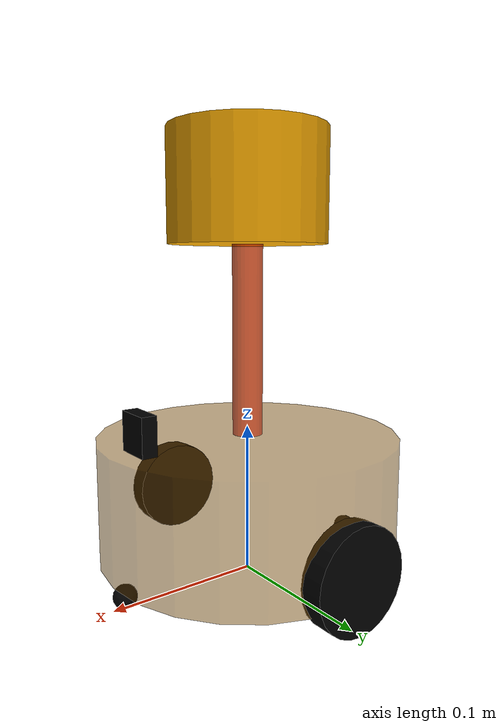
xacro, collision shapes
<!-- 组合小车底盘与摄像头与雷达 -->

<robot name="big_car" xmlns:xacro="http://wiki.ros.org/xacro">
    <xacro:include filename="my_head.urdf.xacro" />
    <xacro:include filename="my_base.urdf.xacro" />
    <xacro:include filename="my_camera.urdf.xacro" />
    <xacro:include filename="$(find my_velodyne_description)/urdf/VLP-16.urdf.xacro" />
    <xacro:include filename="move.urdf.xacro" />

    <!-- 调用VLP-16的宏 -->
    <xacro:VLP-16 parent="support">
        <origin xyz="0 0 0.05" rpy="0 0 0" />
    </xacro:VLP-16>
</robot>

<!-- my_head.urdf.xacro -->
<robot name="base" xmlns:xacro="http://wiki.ros.org/xacro">
    <!-- Macro for inertia matrix -->
    <xacro:macro name="sphere_inertial_matrix" params="m r">
        <inertial>
            <mass value="${m}" />
            <inertia ixx="${2*m*r*r/5}" ixy="0" ixz="0"
                iyy="${2*m*r*r/5}" iyz="0"
                izz="${2*m*r*r/5}" />
        </inertial>
    </xacro:macro>

    <xacro:macro name="cylinder_inertial_matrix" params="m r h">
        <inertial>
            <mass value="${m}" />
            <inertia ixx="${m*(3*r*r+h*h)/12}" ixy = "0" ixz = "0"
                iyy="${m*(3*r*r+h*h)/12}" iyz = "0"
                izz="${m*r*r/2}" />
        </inertial>
    </xacro:macro>

    <xacro:macro name="Box_inertial_matrix" params="m l w h">
       <inertial>
               <mass value="${m}" />
               <inertia ixx="${m*(h*h + l*l)/12}" ixy = "0" ixz = "0"
                   iyy="${m*(w*w + l*l)/12}" iyz= "0"
                   izz="${m*(w*w + h*h)/12}" />
       </inertial>
   </xacro:macro>
</robot>

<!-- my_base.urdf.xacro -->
<robot name="my_base" xmlns:xacro="http://www.ros.org/wiki/xacro">
    <!-- 封装变量、常量 -->
    <xacro:property name="PI" value="3.1415926"/>
    <!-- 宏:黑色设置 -->
    <material name="black">
        <color rgba="0.0 0.0 0.0 1.0" />
    </material>
    <!-- 底盘属性 -->
    <xacro:property name="base_footprint_radius" value="0.001" /> <!-- base_footprint 半径  -->
    <xacro:property name="base_link_radius" value="0.1" /> <!-- base_link 半径 -->
    <xacro:property name="base_link_length" value="0.08" /> <!-- base_link 长 -->
    <xacro:property name="earth_space" value="0.015" /> <!-- 离地间距 -->
    <xacro:property name="base_link_m" value="0.5" /> <!-- 质量  -->

    <!-- 底盘 -->
    <link name="base_footprint">
      <visual>
        <geometry>
          <sphere radius="${base_footprint_radius}" />
        </geometry>
      </visual>
    </link>

    <link name="base_link">
      <visual>
        <geometry>
          <cylinder radius="${base_link_radius}" length="${base_link_length}" />
        </geometry>
        <origin xyz="0 0 0" rpy="0 0 0" />
        <material name="yellow">
          <color rgba="0.5 0.3 0.0 0.5" />
        </material>
      </visual>

      <collision>
        <geometry>
          <cylinder radius="${base_link_radius}" length="${base_link_length}" />
        </geometry>
        <origin xyz="0 0 0" rpy="0 0 0" />
      </collision>

      <xacro:cylinder_inertial_matrix m="${base_link_m}" r="${base_link_radius}" h="${base_link_length}" />

    </link>

    <joint name="base_link2base_footprint" type="fixed">
      <parent link="base_footprint" />
      <child link="base_link" />
      <origin xyz="0 0 ${earth_space + base_link_length / 2 }" />
    </joint>

    <gazebo reference="base_link">
        <material>Gazebo/Yellow</material>
    </gazebo>

    <!-- 驱动轮 -->
    <!-- 驱动轮属性 -->
    <xacro:property name="wheel_radius" value="0.0325" /><!-- 半径 -->
    <xacro:property name="wheel_length" value="0.015" /><!-- 宽度 -->
    <xacro:property name="wheel_m" value="0.05" /> <!-- 质量  -->

    <!-- 驱动轮宏实现 -->
    <xacro:macro name="add_wheels" params="name flag">
      <link name="${name}_wheel">
        <visual>
          <geometry>
            <cylinder radius="${wheel_radius}" length="${wheel_length}" />
          </geometry>
          <origin xyz="0.0 0.0 0.0" rpy="${PI / 2} 0.0 0.0" />
          <material name="black" />
        </visual>

        <collision>
          <geometry>
            <cylinder radius="${wheel_radius}" length="${wheel_length}" />
          </geometry>
          <origin xyz="0.0 0.0 0.0" rpy="${PI / 2} 0.0 0.0" />
        </collision>

        <xacro:cylinder_inertial_matrix m="${wheel_m}" r="${wheel_radius}" h="${wheel_length}" />

      </link>

      <joint name="${name}_wheel2base_link" type="continuous">
        <parent link="base_link" />
        <child link="${name}_wheel" />
        <origin xyz="0 ${flag * base_link_radius} ${-(earth_space + base_link_length / 2 - wheel_radius) }" />
        <axis xyz="0 1 0" />
      </joint>

      <gazebo reference="${name}_wheel">
          <material>Gazebo/Black</material>
      </gazebo>

    </xacro:macro>
    <xacro:add_wheels name="left" flag="1" />
    <xacro:add_wheels name="right" flag="-1" />
    <!-- 支撑轮 -->
    <!-- 支撑轮属性 -->
    <xacro:property name="support_wheel_radius" value="0.0075" /> <!-- 支撑轮半径 -->
    <xacro:property name="support_wheel_m" value="0.03" /> <!-- 质量  -->

    <!-- 支撑轮宏 -->
    <xacro:macro name="add_support_wheel" params="name flag" >
      <link name="${name}_wheel">
        <visual>
            <geometry>
                <sphere radius="${support_wheel_radius}" />
            </geometry>
            <origin xyz="0 0 0" rpy="0 0 0" />
            <material name="black" />
        </visual>

        <collision>
            <geometry>
                <sphere radius="${support_wheel_radius}" />
            </geometry>
            <origin xyz="0 0 0" rpy="0 0 0" />
        </collision>

        <xacro:sphere_inertial_matrix m="${support_wheel_m}" r="${support_wheel_radius}" />

      </link>

      <joint name="${name}_wheel2base_link" type="continuous">
          <parent link="base_link" />
          <child link="${name}_wheel" />
          <origin xyz="${flag * (base_link_radius - support_wheel_radius)} 0 ${-(base_link_length / 2 + earth_space / 2)}" />
          <axis xyz="1 1 1" />
      </joint>

      <gazebo reference="${name}_wheel">
          <material>Gazebo/Black</material>
      </gazebo>

    </xacro:macro>

    <xacro:add_support_wheel name="front" flag="1" />
    <xacro:add_support_wheel name="back" flag="-1" />

</robot>

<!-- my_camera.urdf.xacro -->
<!-- 摄像头相关的 xacro 文件 -->
<robot name="my_camera" xmlns:xacro="http://wiki.ros.org/xacro">
    <!-- 摄像头属性 -->
    <xacro:property name="camera_length" value="0.01" /> <!-- 摄像头长度(x) -->
    <xacro:property name="camera_width" value="0.025" /> <!-- 摄像头宽度(y) -->
    <xacro:property name="camera_height" value="0.025" /> <!-- 摄像头高度(z) -->
    <xacro:property name="camera_x" value="0.08" /> <!-- 摄像头安装的x坐标 -->
    <xacro:property name="camera_y" value="0.0" /> <!-- 摄像头安装的y坐标 -->
    <xacro:property name="camera_z" value="${base_link_length / 2 + camera_height / 2}" /> <!-- 摄像头安装的z坐标:底盘高度 / 2 + 摄像头高度 / 2  -->

    <xacro:property name="camera_m" value="0.01" /> <!-- 摄像头质量 -->

    <!-- 摄像头关节以及link -->
    <link name="camera">
        <visual>
            <geometry>
                <box size="${camera_length} ${camera_width} ${camera_height}" />
            </geometry>
            <origin xyz="0.0 0.0 0.0" rpy="0.0 0.0 0.0" />
            <material name="black" />
        </visual>
        <collision>
            <geometry>
                <box size="${camera_length} ${camera_width} ${camera_height}" />
            </geometry>
            <origin xyz="0.0 0.0 0.0" rpy="0.0 0.0 0.0" />
        </collision>
        <xacro:Box_inertial_matrix m="${camera_m}" l="${camera_length}" w="${camera_width}" h="${camera_height}" />
    </link>

    <joint name="camera2base_link" type="fixed">
        <parent link="base_link" />
        <child link="camera" />
        <origin xyz="${camera_x} ${camera_y} ${camera_z}" />
    </joint>
    <gazebo reference="camera">
        <material>Gazebo/Blue</material>
    </gazebo>
</robot>

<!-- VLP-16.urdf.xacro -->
<robot xmlns:xacro="http://www.ros.org/wiki/xacro" name="VLP-16">
  <xacro:property name="M_PI" value="3.1415926535897931" />
  <xacro:macro name="VLP-16" params="*origin parent:=support name:=velodyne topic:=/velodyne_points organize_cloud:=false hz:=5 lasers:=8 samples:=1000 collision_range:=0.3 min_range:=0.9 max_range:=100.0 noise:=0.008 min_angle:=-${M_PI} max_angle:=${M_PI} gpu:=false">

    <!-- 支架定义 -->
    <xacro:property name="support_length" value="0.15" /> <!-- 支架长度 -->
    <xacro:property name="support_radius" value="0.01" /> <!-- 支架半径 -->
    <xacro:property name="support_x" value="0.0" /> <!-- 支架安装的x坐标 -->
    <xacro:property name="support_y" value="0.0" /> <!-- 支架安装的y坐标 -->
    <xacro:property name="support_z" value="${base_link_length / 2 + support_length / 2}" /> <!-- 支架安装的z坐标 -->
    <xacro:property name="support_m" value="0.02" /> <!-- 支架质量 -->

    <link name="support">
        <visual>
            <geometry>
                <cylinder radius="${support_radius}" length="${support_length}" />
            </geometry>
            <origin xyz="0.0 0.0 0.0" rpy="0.0 0.0 0.0" />
            <material name="red">
                <color rgba="0.8 0.2 0.0 0.8" />
            </material>
        </visual>
        <collision>
            <geometry>
                <cylinder radius="${support_radius}" length="${support_length}" />
            </geometry>
            <origin xyz="0.0 0.0 0.0" rpy="0.0 0.0 0.0" />
        </collision>
        <inertial>
            <mass value="${support_m}" />
            <origin xyz="0.0 0.0 0.0" />
            <inertia ixx="${support_m * support_radius * support_radius / 2.0}" ixy="0" ixz="0"
                     iyy="${support_m * support_radius * support_radius / 2.0}" iyz="0"
                     izz="${support_m * (3.0 * support_radius * support_radius + support_length * support_length) / 12.0}" />
        </inertial>
    </link>

    <joint name="support2base_link" type="fixed">
        <parent link="base_link" />
        <child link="support" />
        <origin xyz="${support_x} ${support_y} ${support_z}" />
    </joint>

    <gazebo reference="support">
      <material>Gazebo/White</material>
  </gazebo>
<!--end: add support to VLP lidar  -->

    <joint name="${name}_base_mount_joint" type="fixed">
      <xacro:insert_block name="origin" />
      <parent link="${parent}"/>
      <child link="${name}_base_link"/>
    </joint>

    <link name="${name}_base_link">
      <inertial>
        <!-- 修改质量 -->
        <mass value="0.1"/> <!-- 原值是0.83，减小到0.1 -->
        <origin xyz="0 0 0.03585"/>
        <!-- 修改惯性矩 -->
        <inertia ixx="0.0001" ixy="0" ixz="0"
                 iyy="0.0001" iyz="0"
                 izz="0.0001"/> <!-- 这些值大大减小，以反映质量的减小 -->
      </inertial>
      <visual>
        <geometry>
          <mesh filename="package://velodyne_description/meshes/VLP16_base_1.dae" />
        </geometry>
      </visual>
      <visual>
        <geometry>
          <mesh filename="package://velodyne_description/meshes/VLP16_base_2.dae" />
        </geometry>
      </visual>
      <collision>
        <origin rpy="0 0 0" xyz="0 0 0.03585"/>
        <geometry>
          <cylinder radius="0.0516" length="0.0717"/>
        </geometry>
      </collision>
    </link>

    <joint name="${name}_base_scan_joint" type="fixed" >
      <origin xyz="0 0 0.0377" rpy="0 0 0" />
      <parent link="${name}_base_link" />
      <child link="${name}"/>
    </joint>

    <link name="${name}">
      <inertial>
        <mass value="0.01"/>
        <origin xyz="0 0 0"/>
        <inertia ixx="1e-7" ixy="0" ixz="0" iyy="1e-7" iyz="0" izz="1e-7"/>
      </inertial>
      <visual>
        <origin xyz="0 0 -0.0377" />
        <geometry>
          <mesh filename="package://velodyne_description/meshes/VLP16_scan.dae" />
        </geometry>
      </visual>
      <collision>
        <geometry>
          <sphere radius="0"/>
        </geometry>
      </collision>
    </link>

    <!-- Gazebo requires the velodyne_gazebo_plugins package -->
    <gazebo reference="${name}">
      <xacro:if value="${gpu}">
        <sensor type="gpu_ray" name="${name}-VLP16">
          <pose>0 0 0 0 0 0</pose>
          <visualize>false</visualize>
          <update_rate>${hz}</update_rate>
          <ray>
            <scan>
              <horizontal>
                <samples>${samples}</samples>
                <resolution>1</resolution>
                <min_angle>${min_angle}</min_angle>
                <max_angle>${max_angle}</max_angle>
              </horizontal>
              <vertical>
                <samples>${lasers}</samples>
                <resolution>1</resolution>
                <min_angle>-${15.0*M_PI/180.0}</min_angle>
                <max_angle> ${15.0*M_PI/180.0}</max_angle>
              </vertical>
            </scan>
            <range>
              <min>${collision_range}</min>
              <max>${max_range+1}</max>
              <resolution>0.001</resolution>
            </range>
            <noise>
              <type>gaussian</type>
              <mean>0.0</mean>
              <stddev>0.0</stddev>
            </noise>
          </ray>
          <plugin name="gazebo_ros_laser_controller" filename="libgazebo_ros_velodyne_gpu_laser.so">
            <topicName>${topic}</topicName>
            <frameName>${name}</frameName>
            <organize_cloud>${organize_cloud}</organize_cloud>
            <min_range>${min_range}</min_range>
            <max_range>${max_range}</max_range>
            <gaussianNoise>${noise}</gaussianNoise>
          </plugin>
        </sensor>
      </xacro:if>
      <xacro:unless value="${gpu}">
        <sensor type="ray" name="${name}-VLP16">
          <pose>0 0 0 0 0 0</pose>
          <visualize>false</visualize>
          <update_rate>${hz}</update_rate>
          <ray>
            <scan>
              <horizontal>
                <samples>${samples}</samples>
                <resolution>1</resolution>
                <min_angle>${min_angle}</min_angle>
                <max_angle>${max_angle}</max_angle>
              </horizontal>
              <vertical>
                <samples>${lasers}</samples>
                <resolution>1</resolution>
                <min_angle>-${15.0*M_PI/180.0}</min_angle>
                <max_angle> ${15.0*M_PI/180.0}</max_angle>
              </vertical>
            </scan>
            <range>
              <min>${collision_range}</min>
              <max>${max_range+1}</max>
              <resolution>0.001</resolution>
            </range>
            <noise>
              <type>gaussian</type>
              <mean>0.0</mean>
              <stddev>0.0</stddev>
            </noise>
          </ray>
          <plugin name="gazebo_ros_laser_controller" filename="libgazebo_ros_velodyne_laser.so">
            <topicName>${topic}</topicName>
            <frameName>${name}</frameName>
            <organize_cloud>${organize_cloud}</organize_cloud>
            <min_range>${min_range}</min_range>
            <max_range>${max_range}</max_range>
            <gaussianNoise>${noise}</gaussianNoise>
          </plugin>
        </sensor>
      </xacro:unless>
    </gazebo>

  </xacro:macro>
</robot>
